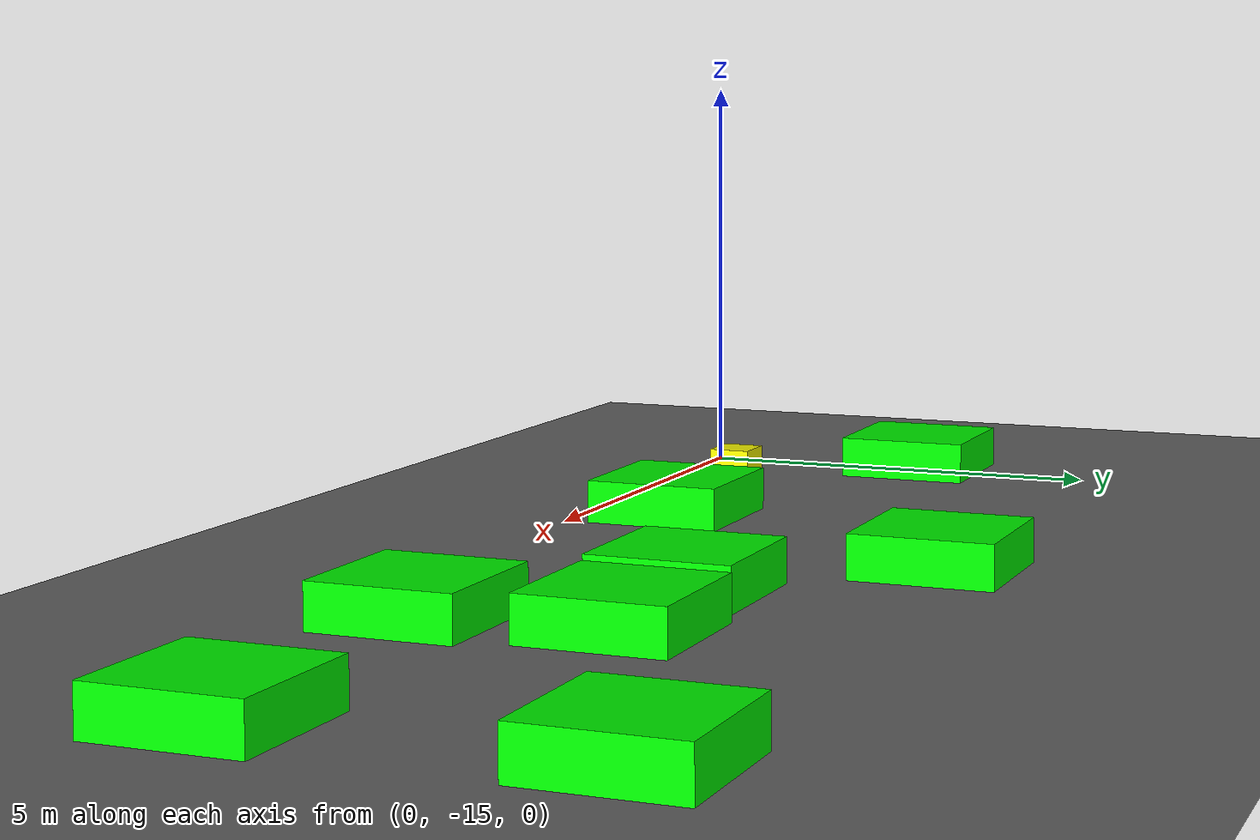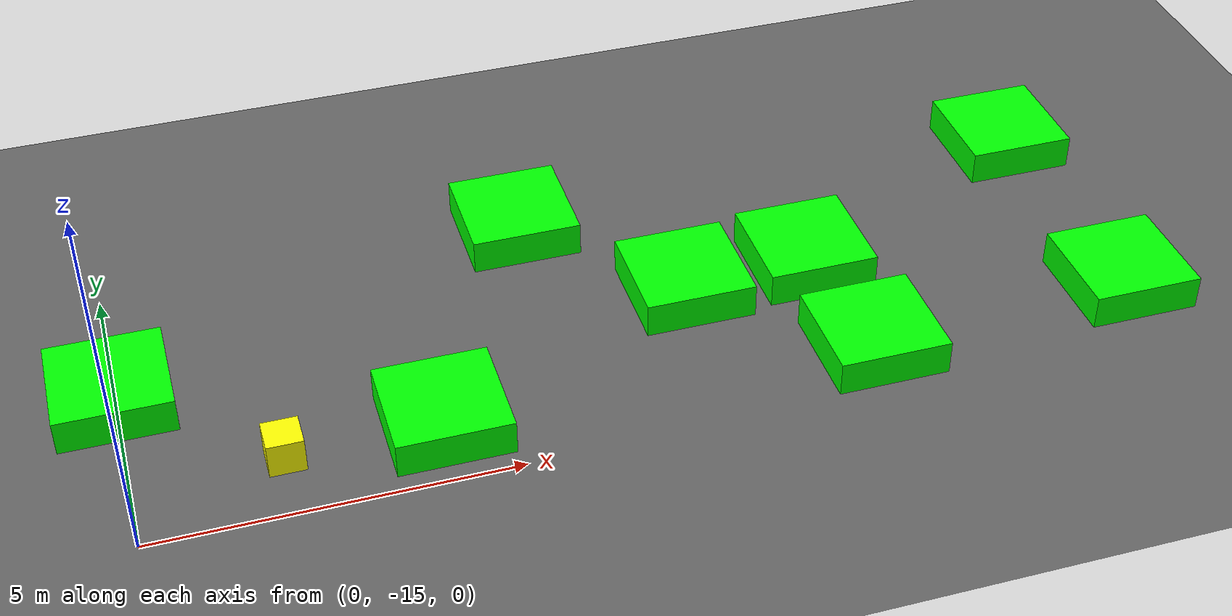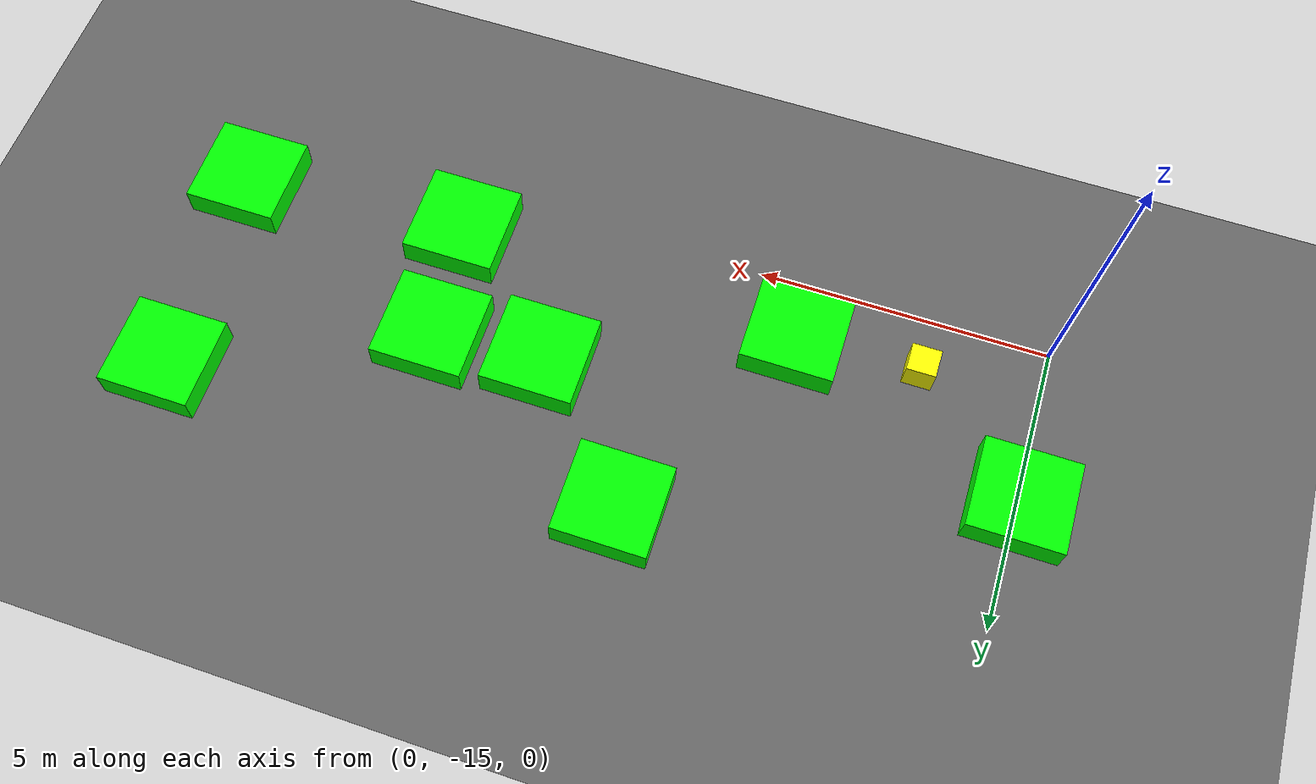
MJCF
<mujoco model="lvl4_standard_obs8_d10_seed0">
    <compiler angle="degree" coordinate="local" inertiafromgeom="true"/>
    <option integrator="RK4" timestep="0.01"/>

    <asset>
        <texture builtin="gradient" height="100" rgb1="0.6 0.8 1" rgb2="0 0 0" type="skybox" width="100"/>
        <texture name="floor_texture" type="2d" builtin="checker" width="100" height="100" rgb1="0 0 0" rgb2="0.8 0.8 0.8"/>
        <material name="MatPlane" reflectance="0.5" shininess="1" specular="1" texrepeat="10 10" texture="floor_texture"/>
    </asset>

    <!-- Excluding the contact between the agent and the goal, and the agent and the floor -->
    <contact>
        <exclude body1="agent" body2="goal"/>
        <exclude body1 = "agent" body2 = "floor"/>
    </contact>

    <extension>
        <plugin plugin = "mujoco.pid">
            <instance name = "pid1">
                <config key="kp" value="2"/>
                <config key="ki" value="0"/>
                <config key="kd" value="55"/>
            </instance>
        </plugin>
    </extension>

    <worldbody>
        <light cutoff="100" diffuse="1 1 1" dir="-0 0 -1.3" directional="true" exponent="1" pos="0 0 1.3" specular=".1 .1 .1"/>
        <body name="floor" pos="0 0 0">
            <geom name="floor_geom" type="plane" size="20 20 0.1" material="MatPlane"/>
        </body>

                <body name="goal" pos="12.0000 -12.0000 0">
            <geom name="goal_geom" type="plane" size="0.5 0.5 1" pos="0 0 0" rgba="1 0 0 1"/>
        </body>

                <body name="agent" pos="2.0000 -14.0000 0.250">
            <joint name="j1" type="slide" axis ="1 0 0 "/>
            <joint name="j2" type="slide" axis ="0 1 0 "/>
            <geom name="agent_geom" type="box" size="0.25 0.25 0.250" rgba="1 1 0 1"/>
        </body>

        <body name="obstacle1" pos="6.0974 -10.0536 0.250">  <geom name="obstacle1_geom" type="box" size="0.8000 0.8000 0.250" rgba="0 1 0 1"/></body>
        <body name="obstacle2" pos="13.9633 -10.1412 0.250">  <geom name="obstacle2_geom" type="box" size="0.8000 0.8000 0.250" rgba="0 1 0 1"/></body>
        <body name="obstacle3" pos="-0.0355 -12.1908 0.250">  <geom name="obstacle3_geom" type="box" size="0.8000 0.8000 0.250" rgba="0 1 0 1"/></body>
        <body name="obstacle4" pos="8.0647 -12.1777 0.250">  <geom name="obstacle4_geom" type="box" size="0.8000 0.8000 0.250" rgba="0 1 0 1"/></body>
        <body name="obstacle5" pos="9.9518 -12.0535 0.250">  <geom name="obstacle5_geom" type="box" size="0.8000 0.8000 0.250" rgba="0 1 0 1"/></body>
        <body name="obstacle6" pos="4.1294 -13.9298 0.250">  <geom name="obstacle6_geom" type="box" size="0.8000 0.8000 0.250" rgba="0 1 0 1"/></body>
        <body name="obstacle7" pos="10.1786 -14.1273 0.250">  <geom name="obstacle7_geom" type="box" size="0.8000 0.8000 0.250" rgba="0 1 0 1"/></body>
        <body name="obstacle8" pos="14.1183 -13.8621 0.250">  <geom name="obstacle8_geom" type="box" size="0.8000 0.8000 0.250" rgba="0 1 0 1"/></body>

    </worldbody>

    <sensor>
<!-- SENSORS -->

        <distance name="dist1" geom1="agent_geom" geom2="obstacle1_geom" cutoff="1.5"/>
        <distance name="dist2" geom1="agent_geom" geom2="obstacle2_geom" cutoff="1.5"/>
        <distance name="dist3" geom1="agent_geom" geom2="obstacle3_geom" cutoff="1.5"/>
        <distance name="dist4" geom1="agent_geom" geom2="obstacle4_geom" cutoff="1.5"/>
        <distance name="dist5" geom1="agent_geom" geom2="obstacle5_geom" cutoff="1.5"/>
        <distance name="dist6" geom1="agent_geom" geom2="obstacle6_geom" cutoff="1.5"/>
        <distance name="dist7" geom1="agent_geom" geom2="obstacle7_geom" cutoff="1.5"/>
        <distance name="dist8" geom1="agent_geom" geom2="obstacle8_geom" cutoff="1.5"/>
</sensor>

    <actuator>
        <plugin joint="j1" plugin="mujoco.pid" instance="pid1" />
        <plugin joint="j2" plugin="mujoco.pid" instance="pid1"/>
    </actuator>
</mujoco>
